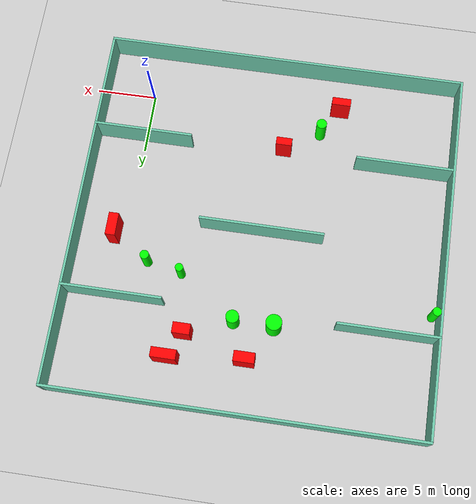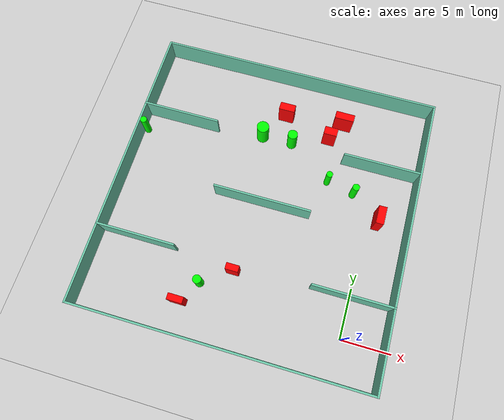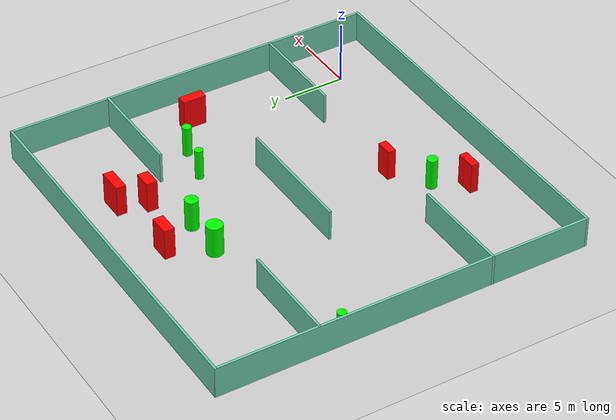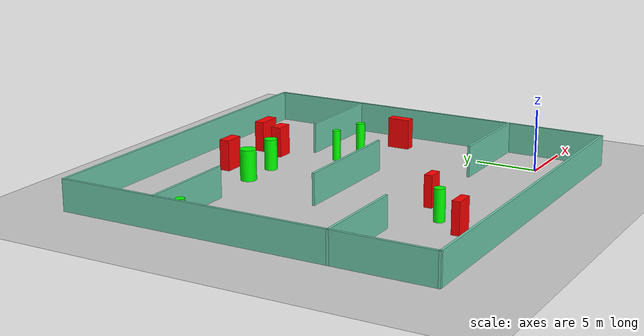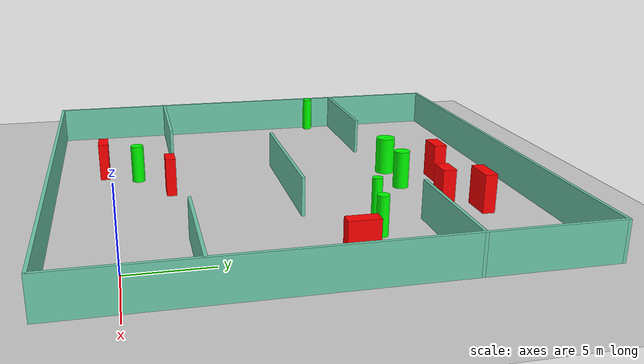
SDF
<sdf version="1.7">
 <world name="default">
  <light name="sun" type="directional">
   <pose>0 0 10 0 -0 0</pose>
   <diffuse>0.8 0.8 0.8 1</diffuse>
   <specular>0.2 0.2 0.2 1</specular>
   <attenuation>
    <range>1000</range>
    <constant>0.9</constant>
    <linear>0.01</linear>
    <quadratic>0.001</quadratic>
   </attenuation>
   <direction>-0.5 0.1 -0.9</direction>
   <spot><inner_angle>0</inner_angle><outer_angle>0</outer_angle><falloff>0</falloff></spot>
  </light>
  <model name="ground_plane">
   <static>1</static>
   <link name="link">
    <collision name="collision">
     <geometry><plane><normal>0 0 1</normal><size>100 100</size></plane></geometry>
     <surface>
      <contact><collide_bitmask>65535</collide_bitmask></contact>
      <friction><ode><mu>100</mu><mu2>50</mu2></ode></friction>
     </surface>
    </collision>
    <visual name="visual">
     <cast_shadows>0</cast_shadows>
     <geometry><plane><normal>0 0 1</normal><size>100 100</size></plane></geometry>
     <material>
      <script><uri>file://media/materials/scripts/gazebo.material</uri><name>Gazebo/Grey</name></script>
     </material>
    </visual>
   </link>
  </model>
  <gravity>0 0 -9.8</gravity>
  <magnetic_field>6e-06 2.3e-05 -4.2e-05</magnetic_field>
  <atmosphere type="adiabatic"/>
  <physics type="ode">
   <max_step_size>0.001</max_step_size>
   <real_time_factor>1</real_time_factor>
   <real_time_update_rate>1000</real_time_update_rate>
  </physics>
  <scene><ambient>0.4 0.4 0.4 1</ambient><background>0.7 0.7 0.7 1</background><shadows>1</shadows></scene>
  <spherical_coordinates>
   <surface_model>EARTH_WGS84</surface_model>
   <latitude_deg>0</latitude_deg>
   <longitude_deg>0</longitude_deg>
   <elevation>0</elevation>
   <heading_deg>0</heading_deg>
  </spherical_coordinates>
  <model name="my_base_walls">
   <link name="Wall_10">
    <collision name="Wall_10_Collision">
     <geometry><box><size>8.2 0.2 2.5</size></box></geometry>
     <pose>0 0 1.25 0 -0 0</pose>
    </collision>
    <visual name="Wall_10_Visual">
     <pose>0 0 1.25 0 -0 0</pose>
     <geometry><box><size>8.2 0.2 2.5</size></box></geometry>
     <material>
      <script><uri>file://media/materials/scripts/gazebo.material</uri><name>Gazebo/Grey</name></script>
      <ambient>0.435294 0.796078 0.67451 1</ambient>
     </material>
     <meta><layer>0</layer></meta>
    </visual>
    <pose>-11 -7 0 0 -0 0</pose>
   </link>
   <link name="Wall_12">
    <collision name="Wall_12_Collision">
     <geometry><box><size>8.2 0.2 2.5</size></box></geometry>
     <pose>0 0 1.25 0 -0 0</pose>
    </collision>
    <visual name="Wall_12_Visual">
     <pose>0 0 1.25 0 -0 0</pose>
     <geometry><box><size>8.2 0.2 2.5</size></box></geometry>
     <material>
      <script><uri>file://media/materials/scripts/gazebo.material</uri><name>Gazebo/Grey</name></script>
      <ambient>0.435294 0.796078 0.67451 1</ambient>
     </material>
     <meta><layer>0</layer></meta>
    </visual>
    <pose>-11 7 0 0 -0 0</pose>
   </link>
   <link name="Wall_14">
    <collision name="Wall_14_Collision">
     <geometry><box><size>8.2 0.2 2.5</size></box></geometry>
     <pose>0 0 1.25 0 -0 0</pose>
    </collision>
    <visual name="Wall_14_Visual">
     <pose>0 0 1.25 0 -0 0</pose>
     <geometry><box><size>8.2 0.2 2.5</size></box></geometry>
     <material>
      <script><uri>file://media/materials/scripts/gazebo.material</uri><name>Gazebo/Grey</name></script>
      <ambient>0.435294 0.796078 0.67451 1</ambient>
     </material>
     <meta><layer>0</layer></meta>
    </visual>
    <pose>11 7 0 0 -0 3.14159</pose>
   </link>
   <link name="Wall_16">
    <collision name="Wall_16_Collision">
     <geometry><box><size>10.2 0.2 2.5</size></box></geometry>
     <pose>0 0 1.25 0 -0 0</pose>
    </collision>
    <visual name="Wall_16_Visual">
     <pose>0 0 1.25 0 -0 0</pose>
     <geometry><box><size>10.2 0.2 2.5</size></box></geometry>
     <material>
      <script><uri>file://media/materials/scripts/gazebo.material</uri><name>Gazebo/Grey</name></script>
      <ambient>0.435294 0.796078 0.67451 1</ambient>
     </material>
     <meta><layer>0</layer></meta>
    </visual>
    <pose>0 0 0 0 -0 3.14159</pose>
   </link>
   <link name="Wall_2">
    <collision name="Wall_2_Collision">
     <geometry><box><size>30.2 0.2 2.5</size></box></geometry>
     <pose>0 0 1.25 0 -0 0</pose>
    </collision>
    <visual name="Wall_2_Visual">
     <pose>0 0 1.25 0 -0 0</pose>
     <geometry><box><size>30.2 0.2 2.5</size></box></geometry>
     <material>
      <script><uri>file://media/materials/scripts/gazebo.material</uri><name>Gazebo/Grey</name></script>
      <ambient>0.435294 0.796078 0.67451 1</ambient>
     </material>
     <meta><layer>0</layer></meta>
    </visual>
    <pose>0 -15 0 0 -0 3.14159</pose>
   </link>
   <link name="Wall_3">
    <collision name="Wall_3_Collision">
     <geometry><box><size>30.2 0.2 2.5</size></box></geometry>
     <pose>0 0 1.25 0 -0 0</pose>
    </collision>
    <visual name="Wall_3_Visual">
     <pose>0 0 1.25 0 -0 0</pose>
     <geometry><box><size>30.2 0.2 2.5</size></box></geometry>
     <material>
      <script><uri>file://media/materials/scripts/gazebo.material</uri><name>Gazebo/Grey</name></script>
      <ambient>0.435294 0.796078 0.67451 1</ambient>
     </material>
     <meta><layer>0</layer></meta>
    </visual>
    <pose>-15 0 0 0 -0 1.5708</pose>
   </link>
   <link name="Wall_4">
    <collision name="Wall_4_Collision">
     <geometry><box><size>30.2 0.2 2.5</size></box></geometry>
     <pose>0 0 1.25 0 -0 0</pose>
    </collision>
    <visual name="Wall_4_Visual">
     <pose>0 0 1.25 0 -0 0</pose>
     <geometry><box><size>30.2 0.2 2.5</size></box></geometry>
     <material>
      <script><uri>file://media/materials/scripts/gazebo.material</uri><name>Gazebo/Grey</name></script>
      <ambient>0.435294 0.796078 0.67451 1</ambient>
     </material>
     <meta><layer>0</layer></meta>
    </visual>
    <pose>0 15 0 0 -0 0</pose>
   </link>
   <link name="Wall_6">
    <collision name="Wall_6_Collision">
     <geometry><box><size>30.2 0.2 2.5</size></box></geometry>
     <pose>0 0 1.25 0 -0 0</pose>
    </collision>
    <visual name="Wall_6_Visual">
     <pose>0 0 1.25 0 -0 0</pose>
     <geometry><box><size>30.2 0.2 2.5</size></box></geometry>
     <material>
      <script><uri>file://media/materials/scripts/gazebo.material</uri><name>Gazebo/Grey</name></script>
      <ambient>0.435294 0.796078 0.67451 1</ambient>
     </material>
     <meta><layer>0</layer></meta>
    </visual>
    <pose>15 0 0 0 -0 1.5708</pose>
   </link>
   <link name="Wall_8">
    <collision name="Wall_8_Collision">
     <geometry><box><size>8.2 0.2 2.5</size></box></geometry>
     <pose>0 0 1.25 0 -0 0</pose>
    </collision>
    <visual name="Wall_8_Visual">
     <pose>0 0 1.25 0 -0 0</pose>
     <geometry><box><size>8.2 0.2 2.5</size></box></geometry>
     <material>
      <script><uri>file://media/materials/scripts/gazebo.material</uri><name>Gazebo/Grey</name></script>
      <ambient>0.435294 0.796078 0.67451 1</ambient>
     </material>
     <meta><layer>0</layer></meta>
    </visual>
    <pose>11 -7 0 0 -0 3.14159</pose>
   </link>
   <static>1</static>
   <pose>-11 11 0 0 -0 0</pose>
  </model>
  <model name="cylinder1">
   <static>1</static>
   <link name="link">
    <inertial>
     <mass>1</mass>
     <inertia><ixx>0.5</ixx><ixy>0</ixy><ixz>0</ixz><iyy>0.5</iyy><iyz>0</iyz><izz>1</izz></inertia>
    </inertial>
    <collision name="collision">
     <geometry><cylinder><radius>0.6433965686762277</radius><length>2.5</length></cylinder></geometry>
    </collision>
    <visual name="visual">
     <geometry><cylinder><radius>0.6433965686762277</radius><length>2.5</length></cylinder></geometry>
     <material>
      <ambient>0 1 0 1</ambient>
      <diffuse>0 1 0 1</diffuse>
      <specular>0.1 0.1 0.1 1</specular>
      <emissive>0 0 0 0</emissive>
     </material>
    </visual>
   </link>
   <pose>-13.087267446918364 18.664973526060663 1.25 0 0 0</pose>
  </model>
  <model name="cylinder2">
   <static>1</static>
   <link name="link">
    <inertial>
     <mass>1</mass>
     <inertia><ixx>0.5</ixx><ixy>0</ixy><ixz>0</ixz><iyy>0.5</iyy><iyz>0</iyz><izz>1</izz></inertia>
    </inertial>
    <collision name="collision">
     <geometry><cylinder><radius>0.36310918871439285</radius><length>2.5</length></cylinder></geometry>
    </collision>
    <visual name="visual">
     <geometry><cylinder><radius>0.36310918871439285</radius><length>2.5</length></cylinder></geometry>
     <material>
      <ambient>0 1 0 1</ambient>
      <diffuse>0 1 0 1</diffuse>
      <specular>0.1 0.1 0.1 1</specular>
      <emissive>0 0 0 0</emissive>
     </material>
    </visual>
   </link>
   <pose>-2.111471048934 14.727814412148263 1.25 0 0 0</pose>
  </model>
  <model name="cylinder3">
   <static>1</static>
   <link name="link">
    <inertial>
     <mass>1</mass>
     <inertia><ixx>0.5</ixx><ixy>0</ixy><ixz>0</ixz><iyy>0.5</iyy><iyz>0</iyz><izz>1</izz></inertia>
    </inertial>
    <collision name="collision">
     <geometry><cylinder><radius>0.42622039859323096</radius><length>2.5</length></cylinder></geometry>
    </collision>
    <visual name="visual">
     <geometry><cylinder><radius>0.42622039859323096</radius><length>2.5</length></cylinder></geometry>
     <material>
      <ambient>0 1 0 1</ambient>
      <diffuse>0 1 0 1</diffuse>
      <specular>0.1 0.1 0.1 1</specular>
      <emissive>0 0 0 0</emissive>
     </material>
    </visual>
   </link>
   <pose>-14.703263178276389 1.443354215539391 1.25 0 0 0</pose>
  </model>
  <model name="cylinder4">
   <static>1</static>
   <link name="link">
    <inertial>
     <mass>1</mass>
     <inertia><ixx>0.5</ixx><ixy>0</ixy><ixz>0</ixz><iyy>0.5</iyy><iyz>0</iyz><izz>1</izz></inertia>
    </inertial>
    <collision name="collision">
     <geometry><cylinder><radius>0.3241736555785963</radius><length>2.5</length></cylinder></geometry>
    </collision>
    <visual name="visual">
     <geometry><cylinder><radius>0.3241736555785963</radius><length>2.5</length></cylinder></geometry>
     <material>
      <ambient>0 1 0 1</ambient>
      <diffuse>0 1 0 1</diffuse>
      <specular>0.1 0.1 0.1 1</specular>
      <emissive>0 0 0 0</emissive>
     </material>
    </visual>
   </link>
   <pose>-5.031026815010414 15.366480080176526 1.25 0 0 0</pose>
  </model>
  <model name="cylinder5">
   <static>1</static>
   <link name="link">
    <inertial>
     <mass>1</mass>
     <inertia><ixx>0.5</ixx><ixy>0</ixy><ixz>0</ixz><iyy>0.5</iyy><iyz>0</iyz><izz>1</izz></inertia>
    </inertial>
    <collision name="collision">
     <geometry><cylinder><radius>0.5224335166434562</radius><length>2.5</length></cylinder></geometry>
    </collision>
    <visual name="visual">
     <geometry><cylinder><radius>0.5224335166434562</radius><length>2.5</length></cylinder></geometry>
     <material>
      <ambient>0 1 0 1</ambient>
      <diffuse>0 1 0 1</diffuse>
      <specular>0.1 0.1 0.1 1</specular>
      <emissive>0 0 0 0</emissive>
     </material>
    </visual>
   </link>
   <pose>-9.81130754994502 18.67057893624209 1.25 0 0 0</pose>
  </model>
  <model name="cylinder6">
   <static>1</static>
   <link name="link">
    <inertial>
     <mass>1</mass>
     <inertia><ixx>0.5</ixx><ixy>0</ixy><ixz>0</ixz><iyy>0.5</iyy><iyz>0</iyz><izz>1</izz></inertia>
    </inertial>
    <collision name="collision">
     <geometry><cylinder><radius>0.3506559035900127</radius><length>2.5</length></cylinder></geometry>
    </collision>
    <visual name="visual">
     <geometry><cylinder><radius>0.3506559035900127</radius><length>2.5</length></cylinder></geometry>
     <material>
      <ambient>0 1 0 1</ambient>
      <diffuse>0 1 0 1</diffuse>
      <specular>0.1 0.1 0.1 1</specular>
      <emissive>0 0 0 0</emissive>
     </material>
    </visual>
   </link>
   <pose>-25.570003723847556 15.997805177335419 1.25 0 0 0</pose>
  </model>
  <model name="box1">
   <static>1</static>
   <link name="link">
    <inertial>
     <mass>1</mass>
     <inertia><ixx>0.083</ixx><ixy>0</ixy><ixz>0</ixz><iyy>0.083</iyy><iyz>0</iyz><izz>0.083</izz></inertia>
    </inertial>
    <collision name="collision">
     <geometry><box><size>0.8091957997621462 1.8630260434556212 2.5</size></box></geometry>
    </collision>
    <visual name="visual">
     <geometry><box><size>0.8091957997621462 1.8630260434556212 2.5</size></box></geometry>
     <material>
      <ambient>1 0 0 1</ambient>
      <diffuse>1 0 0 1</diffuse>
      <specular>0.1 0.1 0.1 1</specular>
      <emissive>0 0 0 0</emissive>
     </material>
    </visual>
    <sensor name="my_contact" type="contact">
     <contact><collision>box_collision</collision><topic>__default_topic__</topic></contact>
    </sensor>
   </link>
   <pose>0.9429535645772944 12.558144346799523 1.25 0 0 0</pose>
  </model>
  <model name="box2">
   <static>1</static>
   <link name="link">
    <inertial>
     <mass>1</mass>
     <inertia><ixx>0.083</ixx><ixy>0</ixy><ixz>0</ixz><iyy>0.083</iyy><iyz>0</iyz><izz>0.083</izz></inertia>
    </inertial>
    <collision name="collision">
     <geometry><box><size>1.4044849439505485 0.864146091155904 2.5</size></box></geometry>
    </collision>
    <visual name="visual">
     <geometry><box><size>1.4044849439505485 0.864146091155904 2.5</size></box></geometry>
     <material>
      <ambient>1 0 0 1</ambient>
      <diffuse>1 0 0 1</diffuse>
      <specular>0.1 0.1 0.1 1</specular>
      <emissive>0 0 0 0</emissive>
     </material>
    </visual>
    <sensor name="my_contact" type="contact">
     <contact><collision>box_collision</collision><topic>__default_topic__</topic></contact>
    </sensor>
   </link>
   <pose>-6.026109212123341 20.151178649101958 1.25 0 0 0</pose>
  </model>
  <model name="box3">
   <static>1</static>
   <link name="link">
    <inertial>
     <mass>1</mass>
     <inertia><ixx>0.083</ixx><ixy>0</ixy><ixz>0</ixz><iyy>0.083</iyy><iyz>0</iyz><izz>0.083</izz></inertia>
    </inertial>
    <collision name="collision">
     <geometry><box><size>1.669902295098563 0.8386626916827926 2.5</size></box></geometry>
    </collision>
    <visual name="visual">
     <geometry><box><size>1.669902295098563 0.8386626916827926 2.5</size></box></geometry>
     <material>
      <ambient>1 0 0 1</ambient>
      <diffuse>1 0 0 1</diffuse>
      <specular>0.1 0.1 0.1 1</specular>
      <emissive>0 0 0 0</emissive>
     </material>
    </visual>
    <sensor name="my_contact" type="contact">
     <contact><collision>box_collision</collision><topic>__default_topic__</topic></contact>
    </sensor>
   </link>
   <pose>-11.185175612142242 21.657735334807974 1.25 0 0 0</pose>
  </model>
  <model name="box4">
   <static>1</static>
   <link name="link">
    <inertial>
     <mass>1</mass>
     <inertia><ixx>0.083</ixx><ixy>0</ixy><ixz>0</ixz><iyy>0.083</iyy><iyz>0</iyz><izz>0.083</izz></inertia>
    </inertial>
    <collision name="collision">
     <geometry><box><size>1.5680611075492639 0.6415535696389513 2.5</size></box></geometry>
    </collision>
    <visual name="visual">
     <geometry><box><size>1.5680611075492639 0.6415535696389513 2.5</size></box></geometry>
     <material>
      <ambient>1 0 0 1</ambient>
      <diffuse>1 0 0 1</diffuse>
      <specular>0.1 0.1 0.1 1</specular>
      <emissive>0 0 0 0</emissive>
     </material>
    </visual>
    <sensor name="my_contact" type="contact">
     <contact><collision>box_collision</collision><topic>__default_topic__</topic></contact>
    </sensor>
   </link>
   <pose>-16.113723124574335 -0.8112785121010733 1.25 0 0 0</pose>
  </model>
  <model name="box5">
   <static>1</static>
   <link name="link">
    <inertial>
     <mass>1</mass>
     <inertia><ixx>0.083</ixx><ixy>0</ixy><ixz>0</ixz><iyy>0.083</iyy><iyz>0</iyz><izz>0.083</izz></inertia>
    </inertial>
    <collision name="collision">
     <geometry><box><size>2.0121845349928478 0.7918783605460252 2.5</size></box></geometry>
    </collision>
    <visual name="visual">
     <geometry><box><size>2.0121845349928478 0.7918783605460252 2.5</size></box></geometry>
     <material>
      <ambient>1 0 0 1</ambient>
      <diffuse>1 0 0 1</diffuse>
      <specular>0.1 0.1 0.1 1</specular>
      <emissive>0 0 0 0</emissive>
     </material>
    </visual>
    <sensor name="my_contact" type="contact">
     <contact><collision>box_collision</collision><topic>__default_topic__</topic></contact>
    </sensor>
   </link>
   <pose>-4.983964330595441 22.26273921921182 1.25 0 0 0</pose>
  </model>
  <model name="box6">
   <static>1</static>
   <link name="link">
    <inertial>
     <mass>1</mass>
     <inertia><ixx>0.083</ixx><ixy>0</ixy><ixz>0</ixz><iyy>0.083</iyy><iyz>0</iyz><izz>0.083</izz></inertia>
    </inertial>
    <collision name="collision">
     <geometry><box><size>1.3067632275805066 0.6446550007888561 2.5</size></box></geometry>
    </collision>
    <visual name="visual">
     <geometry><box><size>1.3067632275805066 0.6446550007888561 2.5</size></box></geometry>
     <material>
      <ambient>1 0 0 1</ambient>
      <diffuse>1 0 0 1</diffuse>
      <specular>0.1 0.1 0.1 1</specular>
      <emissive>0 0 0 0</emissive>
     </material>
    </visual>
    <sensor name="my_contact" type="contact">
     <contact><collision>box_collision</collision><topic>__default_topic__</topic></contact>
    </sensor>
   </link>
   <pose>-11.80606130328581 3.4569096699310684 1.25 0 0 0</pose>
  </model>
 </world>
</sdf>
